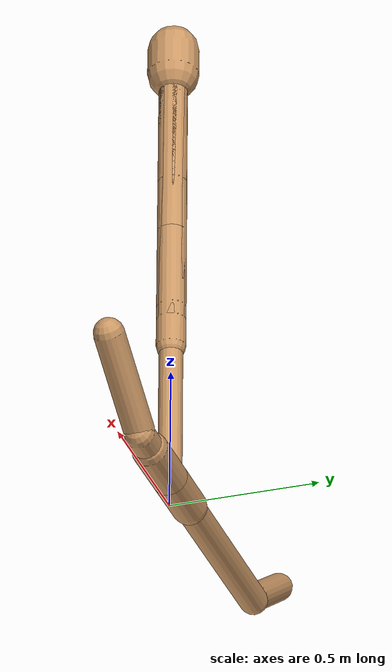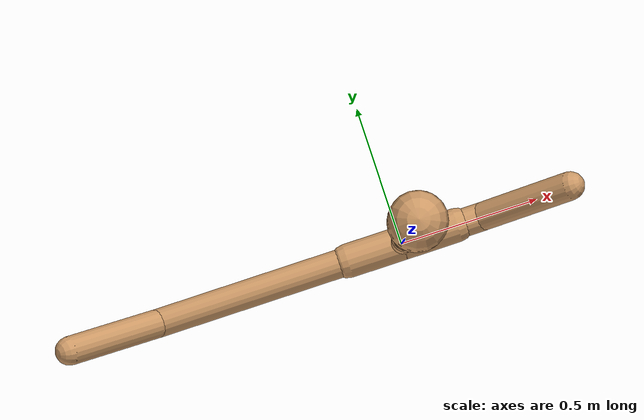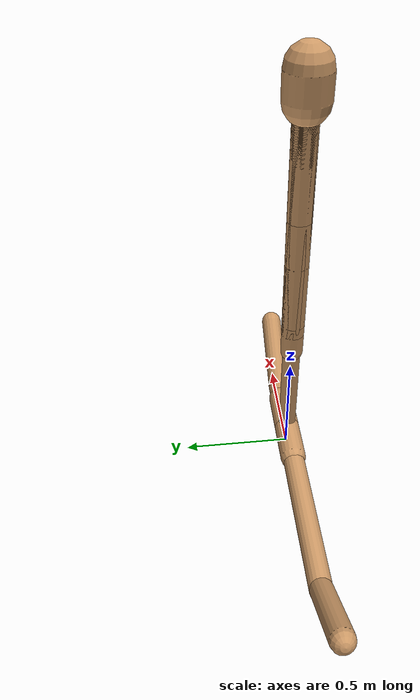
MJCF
<mujoco model="walker2d">
  <compiler angle="degree" coordinate="global" inertiafromgeom="true"/>
  <default>
    <joint armature="0.01" damping=".1" limited="true"/>
    <geom conaffinity="0" condim="3" contype="1" density="1000" friction="0.1 .1 .1" rgba="0.8 0.6 .4 1"/>
  </default>
  <option integrator="RK4" timestep="0.002"/>
  <worldbody>
    <!-- CHANGES: see hopper.xml -->
    <!-- upper body-->

    <!-- lower body -->
    <body name="torso">
      <joint armature="0" axis="1 0 0" damping="0" limited="false" name="ignorex" pos="0 0 0" stiffness="0" type="slide"/>
      <joint armature="0" axis="0 0 1" damping="0" limited="false" name="ignorez" pos="0 0 0" ref="1.25" stiffness="0" type="slide"/>
      <joint armature="0" axis="0 1 0" damping="0" limited="false" name="ignorey" pos="0 0 0" stiffness="0" type="hinge"/>
      <body name="head">
        <joint armature="0" axis="0 1 0" damping="1" limited="false" name="head_joint" pos="0 0 1.70" ref="1.25" stiffness="1" type="fixed"/>
        <geom fromto="0 0 1.70 0 0 1.80" name="head_geom" size="0.09" type="capsule" mass="0.0001"/>
      </body>

      <body name="arm">
        <joint armature="0" axis="0 1 0" damping="1" range="-160 45" name="arm_joint" pos="0 0 1.70" ref="1.25" stiffness="1" type="hinge"/>
        <geom fromto="0 0 1.70 0 0 1.25" name="arm_geom" size="0.05" type="capsule"/>
        <body name="forearm">
          <joint armature="0" axis="0 1 0" damping="1" range="-135 0" name="forearm_joint" pos="0 0 1.25" ref="1.25" stiffness="1" type="hinge"/>
          <geom fromto="0 0 1.25 0 0 0.75" name="forearm_geom" size="0.05" type="capsule"/>
          <body name="hand">
            <joint armature="0" axis="0 1 0" damping="1" range="0 45" name="hand_joint" pos="0 0 0.75" ref="1.25" stiffness="1" type="fixed"/>
            <geom fromto="0 0 0.75 0 0 0.70" name="hand_geom" size="0.05" type="capsule"/>
          </body>
        </body>
      </body>
      <body name="arm_left">
        <joint armature="0" axis="0 1 0" damping="1" range="-160 45" name="arm_left_joint" pos="0 0 1.70" ref="1.25" stiffness="1" type="hinge"/>
        <geom fromto="0 0 1.70 0 0 1.25" name="arm_left_geom" rgba=".7 .3 .6 1" size="0.05" type="capsule"/>
        <body name="forearm_left">
          <joint armature="0" axis="0 1 0" damping="1" range="-135 0" name="forearm_left_joint" pos="0 0 1.25" ref="1.25" stiffness="1" type="hinge"/>
          <geom fromto="0 0 1.25 0 0 0.75" name="forearm_left_geom" rgba=".7 .3 .6 1" size="0.05" type="capsule"/>
          <body name="hand_left">
            <joint armature="0" axis="0 1 0" damping="1" range="0 45" name="hand_left_joint" pos="0 0 0.75" ref="1.25" stiffness="1" type="fixed"/>
            <geom fromto="0 0 0.75 0 0 0.70" name="hand_left_geom" rgba=".7 .3 .6 1" size="0.05" type="capsule"/>
          </body>
        </body>
      </body>
      <geom fromto="0 0 1.70 0 0 1.05" name="torso_geom" size="0.05" type="capsule"/>
      <body name="thigh">
        <joint axis="0 -1 0" name="thigh_joint" pos="0 0 1.05" range="-10 140" type="hinge"/>
        <geom fromto="0 0 1.05 0 0 0.6" name="thigh_geom" size="0.05" type="capsule"/>
        <body name="leg">
          <joint axis="0 -1 0" name="leg_joint" pos="0 0 0.6" range="-120 0" type="hinge"/>
          <geom fromto="0 0 0.6 0 0 0.1" name="leg_geom" size="0.04" type="capsule"/>
          <body name="foot">
            <joint axis="0 -1 0" name="foot_joint" pos="0 0 0.1" range="-45 45" type="hinge"/>
            <geom fromto="-0.0 0 0.1 0.2 0 0.1" name="foot_geom" size="0.06" type="capsule"/>
            <body name="board_right">
              <geom fromto="0.3 0 0.1 -0.9 0 0.1" pos="0 0 -0.1" name="board_geom_right" size="0.05" type="capsule" mass="0.0001"/>
              <body name="board_start">
                <geom fromto="0.3 0 0.11 0.6 0 0.3" pos="0 0 -0.1" name="board_geom_start" size="0.05" type="capsule" mass="0.0001"/>
              </body>
              <body name="board_end">
                <geom fromto="-0.9 0 0.11 -1.2 0 0.3" pos="0 0 -0.1" name="board_geom_end" size="0.05" type="capsule" mass="0.0001"/>
              </body>
            </body>

          </body>
        </body>
      </body>
      <!-- copied and then replace thigh->thigh_left, leg->leg_left, foot->foot_right -->

      <body name="thigh_left">
        <joint axis="0 1 0" name="thigh_left_joint" pos="0 0 1.05" range="-10 140" type="hinge"/>
        <geom fromto="0 0 1.05 0 0 0.6" name="thigh_left_geom" size="0.05" type="capsule"/>
        <body name="leg_left">
          <joint axis="0 1 0" name="leg_left_joint" pos="0 0 0.6" range="-120 0" type="hinge"/>
          <geom fromto="0 0 0.6 0 0 0.1" name="leg_left_geom" size="0.04" type="capsule"/>
          <body name="foot_left">
            <joint axis="0 1 0" name="foot_left_joint" pos="0 0 0.1" range="-45 45" type="hinge"/>
            <geom fromto="-0.0 0 0.1 -0.2 0 0.1" name="foot_left_geom" size="0.06" type="capsule"/>
          </body>
        </body>
      </body>
    </body>

  </worldbody>
  <equality>
    <weld name="weld_board" body1="board_right" body2="board_left" anchor="0.4 0 0.1" relpos="-1.6 0 0 0 0 0 0"/>
  </equality>
  <actuator>
    <motor ctrllimited="true" ctrlrange="-1.0 1.0" gear="100" joint="thigh_joint"/>
    <motor ctrllimited="true" ctrlrange="-1.0 1.0" gear="100" joint="leg_joint"/>
    <motor ctrllimited="true" ctrlrange="-1.0 1.0" gear="100" joint="foot_joint"/>
    <motor ctrllimited="true" ctrlrange="-1.0 1.0" gear="100" joint="thigh_left_joint"/>
    <motor ctrllimited="true" ctrlrange="-1.0 1.0" gear="100" joint="leg_left_joint"/>
    <motor ctrllimited="true" ctrlrange="-1.0 1.0" gear="100" joint="foot_left_joint"/>
    <motor ctrllimited="true" ctrlrange="-1.0 1.0" gear="100" joint="forearm_joint"/>
    <motor ctrllimited="true" ctrlrange="-1.0 1.0" gear="100" joint="forearm_left_joint"/>
    <motor ctrllimited="true" ctrlrange="-1.0 1.0" gear="100" joint="arm_joint"/>
    <motor ctrllimited="true" ctrlrange="-1.0 1.0" gear="100" joint="arm_left_joint"/>

  </actuator>
</mujoco>
